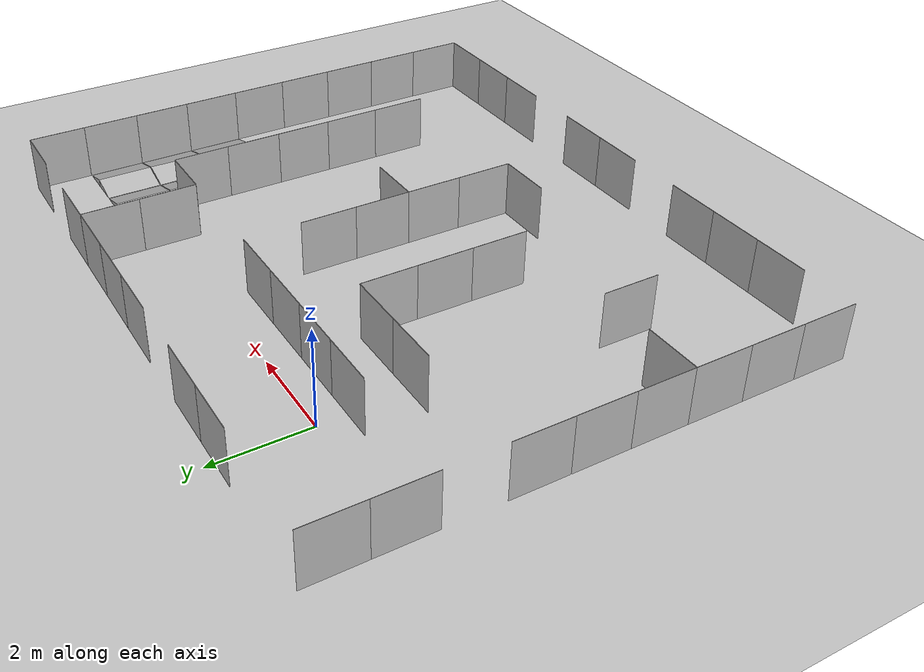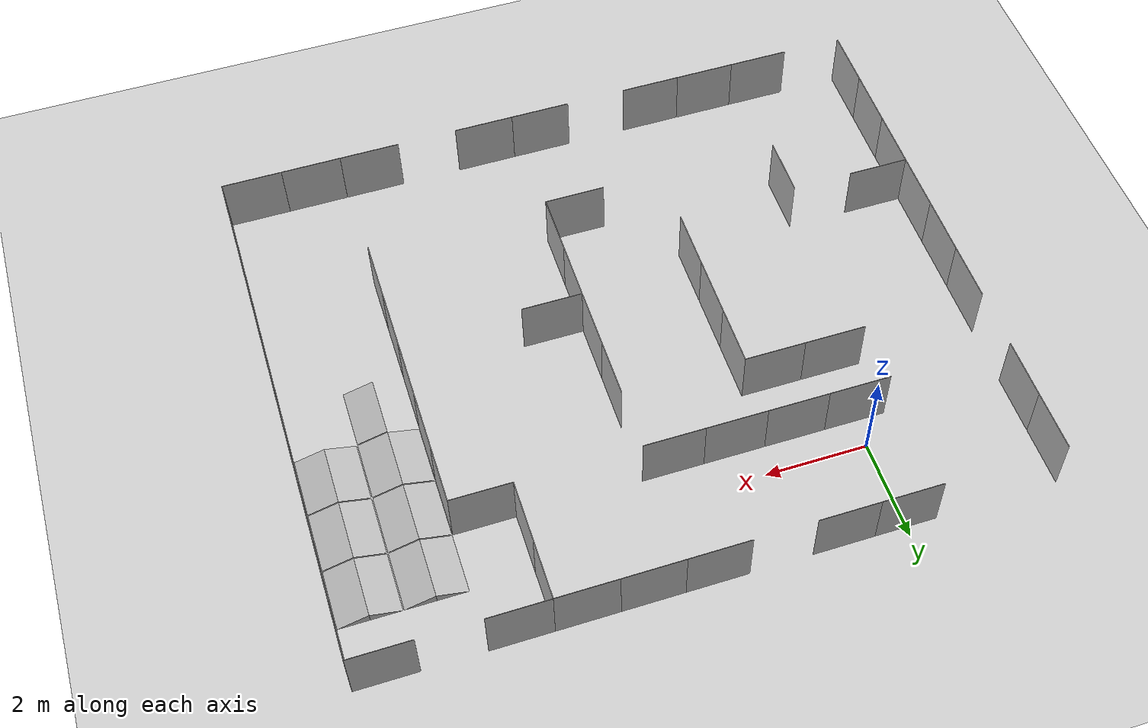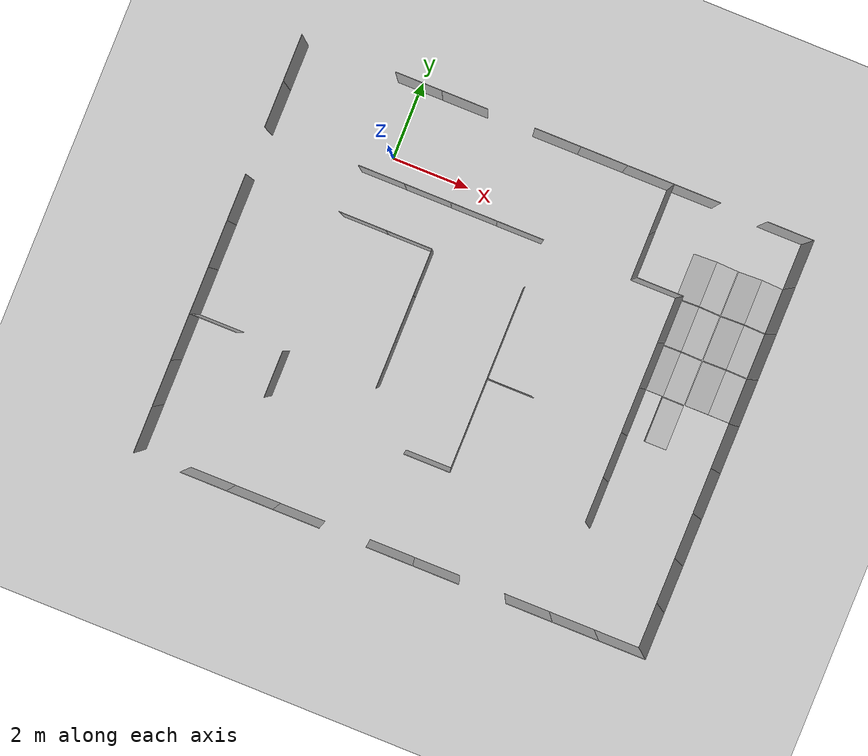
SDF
<sdf version="1.4">
 <world name="default">
  <include><uri>model://sun</uri></include>
  <model name="plane_model">
   <static>true</static>
   <link name="plane_model_link">
    <collision name="plane_model_collision">
     <geometry><plane><normal>0 0 1</normal><size>100 100</size></plane></geometry>
     <surface>
      <friction>
       <ode><mu>10.0</mu><mu2>10.0</mu2><fdir1>0 0 0</fdir1><slip1>0</slip1><slip2>0</slip2></ode>
      </friction>
      <bounce><restitution_coefficient>0</restitution_coefficient><threshold>1000000.0</threshold></bounce>
      <contact>
       <ode>
        <soft_cfm>0</soft_cfm>
        <soft_erp>0.2</soft_erp>
        <kp>1e10</kp>
        <kd>1</kd>
        <max_vel>100.0</max_vel>
        <min_depth>0.0001</min_depth>
       </ode>
      </contact>
     </surface>
    </collision>
    <visual name="plane_model_visual">
     <cast_shadows>false</cast_shadows>
     <geometry><plane><normal>0 0 1</normal><size>100 100</size></plane></geometry>
     <material><script>Gazebo/Grey</script></material>
    </visual>
   </link>
  </model>
  <model name="small_wall_1">
   <static>true</static>
   <link name="small_wall_1_link">
    <pose>-3.6 1.2 0 0 0 -1.5708</pose>
    <collision name="small_wall_1_collision">
     <geometry><mesh><uri>file://robocup/walls/small_wall.dae</uri><scale>1 1 1</scale></mesh></geometry>
    </collision>
    <visual name="small_wall_1_visual">
     <cast_shadows>false</cast_shadows>
     <geometry><mesh><uri>file://robocup/walls/small_wall.dae</uri><scale>1 1 1</scale></mesh></geometry>
    </visual>
   </link>
  </model>
  <model name="small_wall_2">
   <static>true</static>
   <link name="small_wall_2_link">
    <pose>0 2.4 0 0 0 -3.14159</pose>
    <collision name="small_wall_2_collision">
     <geometry><mesh><uri>file://robocup/walls/small_wall.dae</uri><scale>1 1 1</scale></mesh></geometry>
    </collision>
    <visual name="small_wall_2_visual">
     <cast_shadows>false</cast_shadows>
     <geometry><mesh><uri>file://robocup/walls/small_wall.dae</uri><scale>1 1 1</scale></mesh></geometry>
    </visual>
   </link>
  </model>
  <model name="small_wall_3">
   <static>true</static>
   <link name="small_wall_3_link">
    <pose>1.2 2.4 0 0 0 -3.14159</pose>
    <collision name="small_wall_3_collision">
     <geometry><mesh><uri>file://robocup/walls/small_wall.dae</uri><scale>1 1 1</scale></mesh></geometry>
    </collision>
    <visual name="small_wall_3_visual">
     <cast_shadows>false</cast_shadows>
     <geometry><mesh><uri>file://robocup/walls/small_wall.dae</uri><scale>1 1 1</scale></mesh></geometry>
    </visual>
   </link>
  </model>
  <model name="small_wall_4">
   <static>true</static>
   <link name="small_wall_4_link">
    <pose>3.6 2.4 0 0 0 -3.14159</pose>
    <collision name="small_wall_4_collision">
     <geometry><mesh><uri>file://robocup/walls/small_wall.dae</uri><scale>1 1 1</scale></mesh></geometry>
    </collision>
    <visual name="small_wall_4_visual">
     <cast_shadows>false</cast_shadows>
     <geometry><mesh><uri>file://robocup/walls/small_wall.dae</uri><scale>1 1 1</scale></mesh></geometry>
    </visual>
   </link>
  </model>
  <model name="small_wall_5">
   <static>true</static>
   <link name="small_wall_5_link">
    <pose>4.8 2.4 0 0 0 -3.14159</pose>
    <collision name="small_wall_5_collision">
     <geometry><mesh><uri>file://robocup/walls/small_wall.dae</uri><scale>1 1 1</scale></mesh></geometry>
    </collision>
    <visual name="small_wall_5_visual">
     <cast_shadows>false</cast_shadows>
     <geometry><mesh><uri>file://robocup/walls/small_wall.dae</uri><scale>1 1 1</scale></mesh></geometry>
    </visual>
   </link>
  </model>
  <model name="small_wall_6">
   <static>true</static>
   <link name="small_wall_6_link">
    <pose>6 2.4 0 0 0 -3.14159</pose>
    <collision name="small_wall_6_collision">
     <geometry><mesh><uri>file://robocup/walls/small_wall.dae</uri><scale>1 1 1</scale></mesh></geometry>
    </collision>
    <visual name="small_wall_6_visual">
     <cast_shadows>false</cast_shadows>
     <geometry><mesh><uri>file://robocup/walls/small_wall.dae</uri><scale>1 1 1</scale></mesh></geometry>
    </visual>
   </link>
  </model>
  <model name="small_wall_7">
   <static>true</static>
   <link name="small_wall_7_link">
    <pose>7.2 2.4 0 0 0 -3.14159</pose>
    <collision name="small_wall_7_collision">
     <geometry><mesh><uri>file://robocup/walls/small_wall.dae</uri><scale>1 1 1</scale></mesh></geometry>
    </collision>
    <visual name="small_wall_7_visual">
     <cast_shadows>false</cast_shadows>
     <geometry><mesh><uri>file://robocup/walls/small_wall.dae</uri><scale>1 1 1</scale></mesh></geometry>
    </visual>
   </link>
  </model>
  <model name="small_wall_8">
   <static>true</static>
   <link name="small_wall_8_link">
    <pose>9.6 2.4 0 0 0 -3.14159</pose>
    <collision name="small_wall_8_collision">
     <geometry><mesh><uri>file://robocup/walls/small_wall.dae</uri><scale>1 1 1</scale></mesh></geometry>
    </collision>
    <visual name="small_wall_8_visual">
     <cast_shadows>false</cast_shadows>
     <geometry><mesh><uri>file://robocup/walls/small_wall.dae</uri><scale>1 1 1</scale></mesh></geometry>
    </visual>
   </link>
  </model>
  <model name="small_wall_9">
   <static>true</static>
   <link name="small_wall_9_link">
    <pose>10.8 1.2 0 0 0 -4.71239</pose>
    <collision name="small_wall_9_collision">
     <geometry><mesh><uri>file://robocup/walls/small_wall.dae</uri><scale>1 1 1</scale></mesh></geometry>
    </collision>
    <visual name="small_wall_9_visual">
     <cast_shadows>false</cast_shadows>
     <geometry><mesh><uri>file://robocup/walls/small_wall.dae</uri><scale>1 1 1</scale></mesh></geometry>
    </visual>
   </link>
  </model>
  <model name="small_wall_10">
   <static>true</static>
   <link name="small_wall_10_link">
    <pose>10.8 0 0 0 0 -4.71239</pose>
    <collision name="small_wall_10_collision">
     <geometry><mesh><uri>file://robocup/walls/small_wall.dae</uri><scale>1 1 1</scale></mesh></geometry>
    </collision>
    <visual name="small_wall_10_visual">
     <cast_shadows>false</cast_shadows>
     <geometry><mesh><uri>file://robocup/walls/small_wall.dae</uri><scale>1 1 1</scale></mesh></geometry>
    </visual>
   </link>
  </model>
  <model name="small_wall_11">
   <static>true</static>
   <link name="small_wall_11_link">
    <pose>10.8 -1.2 0 0 0 -4.71239</pose>
    <collision name="small_wall_11_collision">
     <geometry><mesh><uri>file://robocup/walls/small_wall.dae</uri><scale>1 1 1</scale></mesh></geometry>
    </collision>
    <visual name="small_wall_11_visual">
     <cast_shadows>false</cast_shadows>
     <geometry><mesh><uri>file://robocup/walls/small_wall.dae</uri><scale>1 1 1</scale></mesh></geometry>
    </visual>
   </link>
  </model>
  <model name="small_wall_12">
   <static>true</static>
   <link name="small_wall_12_link">
    <pose>10.8 -2.4 0 0 0 -4.71239</pose>
    <collision name="small_wall_12_collision">
     <geometry><mesh><uri>file://robocup/walls/small_wall.dae</uri><scale>1 1 1</scale></mesh></geometry>
    </collision>
    <visual name="small_wall_12_visual">
     <cast_shadows>false</cast_shadows>
     <geometry><mesh><uri>file://robocup/walls/small_wall.dae</uri><scale>1 1 1</scale></mesh></geometry>
    </visual>
   </link>
  </model>
  <model name="small_wall_13">
   <static>true</static>
   <link name="small_wall_13_link">
    <pose>-3.6 0 0 0 0 -1.5708</pose>
    <collision name="small_wall_13_collision">
     <geometry><mesh><uri>file://robocup/walls/small_wall.dae</uri><scale>1 1 1</scale></mesh></geometry>
    </collision>
    <visual name="small_wall_13_visual">
     <cast_shadows>false</cast_shadows>
     <geometry><mesh><uri>file://robocup/walls/small_wall.dae</uri><scale>1 1 1</scale></mesh></geometry>
    </visual>
   </link>
  </model>
  <model name="small_wall_14">
   <static>true</static>
   <link name="small_wall_14_link">
    <pose>-3.6 -2.4 0 0 0 -1.5708</pose>
    <collision name="small_wall_14_collision">
     <geometry><mesh><uri>file://robocup/walls/small_wall.dae</uri><scale>1 1 1</scale></mesh></geometry>
    </collision>
    <visual name="small_wall_14_visual">
     <cast_shadows>false</cast_shadows>
     <geometry><mesh><uri>file://robocup/walls/small_wall.dae</uri><scale>1 1 1</scale></mesh></geometry>
    </visual>
   </link>
  </model>
  <model name="small_wall_15">
   <static>true</static>
   <link name="small_wall_15_link">
    <pose>-3.6 -3.6 0 0 0 -1.5708</pose>
    <collision name="small_wall_15_collision">
     <geometry><mesh><uri>file://robocup/walls/small_wall.dae</uri><scale>1 1 1</scale></mesh></geometry>
    </collision>
    <visual name="small_wall_15_visual">
     <cast_shadows>false</cast_shadows>
     <geometry><mesh><uri>file://robocup/walls/small_wall.dae</uri><scale>1 1 1</scale></mesh></geometry>
    </visual>
   </link>
  </model>
  <model name="small_wall_16">
   <static>true</static>
   <link name="small_wall_16_link">
    <pose>-3.6 -4.8 0 0 0 -1.5708</pose>
    <collision name="small_wall_16_collision">
     <geometry><mesh><uri>file://robocup/walls/small_wall.dae</uri><scale>1 1 1</scale></mesh></geometry>
    </collision>
    <visual name="small_wall_16_visual">
     <cast_shadows>false</cast_shadows>
     <geometry><mesh><uri>file://robocup/walls/small_wall.dae</uri><scale>1 1 1</scale></mesh></geometry>
    </visual>
   </link>
  </model>
  <model name="small_wall_17">
   <static>true</static>
   <link name="small_wall_17_link">
    <pose>-3.6 -6 0 0 0 -1.5708</pose>
    <collision name="small_wall_17_collision">
     <geometry><mesh><uri>file://robocup/walls/small_wall.dae</uri><scale>1 1 1</scale></mesh></geometry>
    </collision>
    <visual name="small_wall_17_visual">
     <cast_shadows>false</cast_shadows>
     <geometry><mesh><uri>file://robocup/walls/small_wall.dae</uri><scale>1 1 1</scale></mesh></geometry>
    </visual>
   </link>
  </model>
  <model name="small_wall_18">
   <static>true</static>
   <link name="small_wall_18_link">
    <pose>-3.6 -7.2 0 0 0 -1.5708</pose>
    <collision name="small_wall_18_collision">
     <geometry><mesh><uri>file://robocup/walls/small_wall.dae</uri><scale>1 1 1</scale></mesh></geometry>
    </collision>
    <visual name="small_wall_18_visual">
     <cast_shadows>false</cast_shadows>
     <geometry><mesh><uri>file://robocup/walls/small_wall.dae</uri><scale>1 1 1</scale></mesh></geometry>
    </visual>
   </link>
  </model>
  <model name="small_wall_19">
   <static>true</static>
   <link name="small_wall_19_link">
    <pose>10.8 -3.6 0 0 0 -4.71239</pose>
    <collision name="small_wall_19_collision">
     <geometry><mesh><uri>file://robocup/walls/small_wall.dae</uri><scale>1 1 1</scale></mesh></geometry>
    </collision>
    <visual name="small_wall_19_visual">
     <cast_shadows>false</cast_shadows>
     <geometry><mesh><uri>file://robocup/walls/small_wall.dae</uri><scale>1 1 1</scale></mesh></geometry>
    </visual>
   </link>
  </model>
  <model name="small_wall_20">
   <static>true</static>
   <link name="small_wall_20_link">
    <pose>10.8 -4.8 0 0 0 -4.71239</pose>
    <collision name="small_wall_20_collision">
     <geometry><mesh><uri>file://robocup/walls/small_wall.dae</uri><scale>1 1 1</scale></mesh></geometry>
    </collision>
    <visual name="small_wall_20_visual">
     <cast_shadows>false</cast_shadows>
     <geometry><mesh><uri>file://robocup/walls/small_wall.dae</uri><scale>1 1 1</scale></mesh></geometry>
    </visual>
   </link>
  </model>
  <model name="small_wall_21">
   <static>true</static>
   <link name="small_wall_21_link">
    <pose>10.8 -6 0 0 0 -4.71239</pose>
    <collision name="small_wall_21_collision">
     <geometry><mesh><uri>file://robocup/walls/small_wall.dae</uri><scale>1 1 1</scale></mesh></geometry>
    </collision>
    <visual name="small_wall_21_visual">
     <cast_shadows>false</cast_shadows>
     <geometry><mesh><uri>file://robocup/walls/small_wall.dae</uri><scale>1 1 1</scale></mesh></geometry>
    </visual>
   </link>
  </model>
  <model name="small_wall_22">
   <static>true</static>
   <link name="small_wall_22_link">
    <pose>10.8 -7.2 0 0 0 -4.71239</pose>
    <collision name="small_wall_22_collision">
     <geometry><mesh><uri>file://robocup/walls/small_wall.dae</uri><scale>1 1 1</scale></mesh></geometry>
    </collision>
    <visual name="small_wall_22_visual">
     <cast_shadows>false</cast_shadows>
     <geometry><mesh><uri>file://robocup/walls/small_wall.dae</uri><scale>1 1 1</scale></mesh></geometry>
    </visual>
   </link>
  </model>
  <model name="small_wall_23">
   <static>true</static>
   <link name="small_wall_23_link">
    <pose>10.8 -8.4 0 0 0 -4.71239</pose>
    <collision name="small_wall_23_collision">
     <geometry><mesh><uri>file://robocup/walls/small_wall.dae</uri><scale>1 1 1</scale></mesh></geometry>
    </collision>
    <visual name="small_wall_23_visual">
     <cast_shadows>false</cast_shadows>
     <geometry><mesh><uri>file://robocup/walls/small_wall.dae</uri><scale>1 1 1</scale></mesh></geometry>
    </visual>
   </link>
  </model>
  <model name="small_wall_24">
   <static>true</static>
   <link name="small_wall_24_link">
    <pose>-3.6 -8.4 0 0 0 -1.5708</pose>
    <collision name="small_wall_24_collision">
     <geometry><mesh><uri>file://robocup/walls/small_wall.dae</uri><scale>1 1 1</scale></mesh></geometry>
    </collision>
    <visual name="small_wall_24_visual">
     <cast_shadows>false</cast_shadows>
     <geometry><mesh><uri>file://robocup/walls/small_wall.dae</uri><scale>1 1 1</scale></mesh></geometry>
    </visual>
   </link>
  </model>
  <model name="small_wall_25">
   <static>true</static>
   <link name="small_wall_25_link">
    <pose>-1.2 -9.6 0 0 0 0</pose>
    <collision name="small_wall_25_collision">
     <geometry><mesh><uri>file://robocup/walls/small_wall.dae</uri><scale>1 1 1</scale></mesh></geometry>
    </collision>
    <visual name="small_wall_25_visual">
     <cast_shadows>false</cast_shadows>
     <geometry><mesh><uri>file://robocup/walls/small_wall.dae</uri><scale>1 1 1</scale></mesh></geometry>
    </visual>
   </link>
  </model>
  <model name="small_wall_26">
   <static>true</static>
   <link name="small_wall_26_link">
    <pose>0 -9.6 0 0 0 0</pose>
    <collision name="small_wall_26_collision">
     <geometry><mesh><uri>file://robocup/walls/small_wall.dae</uri><scale>1 1 1</scale></mesh></geometry>
    </collision>
    <visual name="small_wall_26_visual">
     <cast_shadows>false</cast_shadows>
     <geometry><mesh><uri>file://robocup/walls/small_wall.dae</uri><scale>1 1 1</scale></mesh></geometry>
    </visual>
   </link>
  </model>
  <model name="small_wall_27">
   <static>true</static>
   <link name="small_wall_27_link">
    <pose>1.2 -9.6 0 0 0 0</pose>
    <collision name="small_wall_27_collision">
     <geometry><mesh><uri>file://robocup/walls/small_wall.dae</uri><scale>1 1 1</scale></mesh></geometry>
    </collision>
    <visual name="small_wall_27_visual">
     <cast_shadows>false</cast_shadows>
     <geometry><mesh><uri>file://robocup/walls/small_wall.dae</uri><scale>1 1 1</scale></mesh></geometry>
    </visual>
   </link>
  </model>
  <model name="small_wall_28">
   <static>true</static>
   <link name="small_wall_28_link">
    <pose>3.6 -9.6 0 0 0 0</pose>
    <collision name="small_wall_28_collision">
     <geometry><mesh><uri>file://robocup/walls/small_wall.dae</uri><scale>1 1 1</scale></mesh></geometry>
    </collision>
    <visual name="small_wall_28_visual">
     <cast_shadows>false</cast_shadows>
     <geometry><mesh><uri>file://robocup/walls/small_wall.dae</uri><scale>1 1 1</scale></mesh></geometry>
    </visual>
   </link>
  </model>
  <model name="small_wall_29">
   <static>true</static>
   <link name="small_wall_29_link">
    <pose>4.8 -9.6 0 0 0 0</pose>
    <collision name="small_wall_29_collision">
     <geometry><mesh><uri>file://robocup/walls/small_wall.dae</uri><scale>1 1 1</scale></mesh></geometry>
    </collision>
    <visual name="small_wall_29_visual">
     <cast_shadows>false</cast_shadows>
     <geometry><mesh><uri>file://robocup/walls/small_wall.dae</uri><scale>1 1 1</scale></mesh></geometry>
    </visual>
   </link>
  </model>
  <model name="small_wall_30">
   <static>true</static>
   <link name="small_wall_30_link">
    <pose>7.2 -9.6 0 0 0 0</pose>
    <collision name="small_wall_30_collision">
     <geometry><mesh><uri>file://robocup/walls/small_wall.dae</uri><scale>1 1 1</scale></mesh></geometry>
    </collision>
    <visual name="small_wall_30_visual">
     <cast_shadows>false</cast_shadows>
     <geometry><mesh><uri>file://robocup/walls/small_wall.dae</uri><scale>1 1 1</scale></mesh></geometry>
    </visual>
   </link>
  </model>
  <model name="small_wall_31">
   <static>true</static>
   <link name="small_wall_31_link">
    <pose>8.4 -9.6 0 0 0 0</pose>
    <collision name="small_wall_31_collision">
     <geometry><mesh><uri>file://robocup/walls/small_wall.dae</uri><scale>1 1 1</scale></mesh></geometry>
    </collision>
    <visual name="small_wall_31_visual">
     <cast_shadows>false</cast_shadows>
     <geometry><mesh><uri>file://robocup/walls/small_wall.dae</uri><scale>1 1 1</scale></mesh></geometry>
    </visual>
   </link>
  </model>
  <model name="small_wall_32">
   <static>true</static>
   <link name="small_wall_32_link">
    <pose>9.6 -9.6 0 0 0 0</pose>
    <collision name="small_wall_32_collision">
     <geometry><mesh><uri>file://robocup/walls/small_wall.dae</uri><scale>1 1 1</scale></mesh></geometry>
    </collision>
    <visual name="small_wall_32_visual">
     <cast_shadows>false</cast_shadows>
     <geometry><mesh><uri>file://robocup/walls/small_wall.dae</uri><scale>1 1 1</scale></mesh></geometry>
    </visual>
   </link>
  </model>
  <model name="small_wall_33">
   <static>true</static>
   <link name="small_wall_33_link">
    <pose>7.2 1.2 0 0 0 -4.71239</pose>
    <collision name="small_wall_33_collision">
     <geometry><mesh><uri>file://robocup/walls/small_wall.dae</uri><scale>1 1 1</scale></mesh></geometry>
    </collision>
    <visual name="small_wall_33_visual">
     <cast_shadows>false</cast_shadows>
     <geometry><mesh><uri>file://robocup/walls/small_wall.dae</uri><scale>1 1 1</scale></mesh></geometry>
    </visual>
   </link>
  </model>
  <model name="small_wall_34">
   <static>true</static>
   <link name="small_wall_34_link">
    <pose>7.2 0 0 0 0 -4.71239</pose>
    <collision name="small_wall_34_collision">
     <geometry><mesh><uri>file://robocup/walls/small_wall.dae</uri><scale>1 1 1</scale></mesh></geometry>
    </collision>
    <visual name="small_wall_34_visual">
     <cast_shadows>false</cast_shadows>
     <geometry><mesh><uri>file://robocup/walls/small_wall.dae</uri><scale>1 1 1</scale></mesh></geometry>
    </visual>
   </link>
  </model>
  <model name="small_wall_35">
   <static>true</static>
   <link name="small_wall_35_link">
    <pose>7.2 0 0 0 0 -3.14159</pose>
    <collision name="small_wall_35_collision">
     <geometry><mesh><uri>file://robocup/walls/small_wall.dae</uri><scale>1 1 1</scale></mesh></geometry>
    </collision>
    <visual name="small_wall_35_visual">
     <cast_shadows>false</cast_shadows>
     <geometry><mesh><uri>file://robocup/walls/small_wall.dae</uri><scale>1 1 1</scale></mesh></geometry>
    </visual>
   </link>
  </model>
  <model name="small_wall_36">
   <static>true</static>
   <link name="small_wall_36_link">
    <pose>7.2 -1.2 0 0 0 -1.5708</pose>
    <collision name="small_wall_36_collision">
     <geometry><mesh><uri>file://robocup/walls/small_wall.dae</uri><scale>1 1 1</scale></mesh></geometry>
    </collision>
    <visual name="small_wall_36_visual">
     <cast_shadows>false</cast_shadows>
     <geometry><mesh><uri>file://robocup/walls/small_wall.dae</uri><scale>1 1 1</scale></mesh></geometry>
    </visual>
   </link>
  </model>
  <model name="small_wall_37">
   <static>true</static>
   <link name="small_wall_37_link">
    <pose>8.4 -2.4 0 0 0 -4.71239</pose>
    <collision name="small_wall_37_collision">
     <geometry><mesh><uri>file://robocup/walls/small_wall.dae</uri><scale>1 1 1</scale></mesh></geometry>
    </collision>
    <visual name="small_wall_37_visual">
     <cast_shadows>false</cast_shadows>
     <geometry><mesh><uri>file://robocup/walls/small_wall.dae</uri><scale>1 1 1</scale></mesh></geometry>
    </visual>
   </link>
  </model>
  <model name="small_wall_38">
   <static>true</static>
   <link name="small_wall_38_link">
    <pose>7.2 -3.6 0 0 0 -1.5708</pose>
    <collision name="small_wall_38_collision">
     <geometry><mesh><uri>file://robocup/walls/small_wall.dae</uri><scale>1 1 1</scale></mesh></geometry>
    </collision>
    <visual name="small_wall_38_visual">
     <cast_shadows>false</cast_shadows>
     <geometry><mesh><uri>file://robocup/walls/small_wall.dae</uri><scale>1 1 1</scale></mesh></geometry>
    </visual>
   </link>
  </model>
  <model name="small_wall_39">
   <static>true</static>
   <link name="small_wall_39_link">
    <pose>8.4 -4.8 0 0 0 -4.71239</pose>
    <collision name="small_wall_39_collision">
     <geometry><mesh><uri>file://robocup/walls/small_wall.dae</uri><scale>1 1 1</scale></mesh></geometry>
    </collision>
    <visual name="small_wall_39_visual">
     <cast_shadows>false</cast_shadows>
     <geometry><mesh><uri>file://robocup/walls/small_wall.dae</uri><scale>1 1 1</scale></mesh></geometry>
    </visual>
   </link>
  </model>
  <model name="small_wall_40">
   <static>true</static>
   <link name="small_wall_40_link">
    <pose>7.2 -6 0 0 0 -1.5708</pose>
    <collision name="small_wall_40_collision">
     <geometry><mesh><uri>file://robocup/walls/small_wall.dae</uri><scale>1 1 1</scale></mesh></geometry>
    </collision>
    <visual name="small_wall_40_visual">
     <cast_shadows>false</cast_shadows>
     <geometry><mesh><uri>file://robocup/walls/small_wall.dae</uri><scale>1 1 1</scale></mesh></geometry>
    </visual>
   </link>
  </model>
  <model name="small_wall_41">
   <static>true</static>
   <link name="small_wall_41_link">
    <pose>1.2 -2.4 0 0 0 0</pose>
    <collision name="small_wall_41_collision">
     <geometry><mesh><uri>file://robocup/walls/small_wall.dae</uri><scale>1 1 1</scale></mesh></geometry>
    </collision>
    <visual name="small_wall_41_visual">
     <cast_shadows>false</cast_shadows>
     <geometry><mesh><uri>file://robocup/walls/small_wall.dae</uri><scale>1 1 1</scale></mesh></geometry>
    </visual>
   </link>
  </model>
  <model name="small_wall_42">
   <static>true</static>
   <link name="small_wall_42_link">
    <pose>0 -1.2 0 0 0 -3.14159</pose>
    <collision name="small_wall_42_collision">
     <geometry><mesh><uri>file://robocup/walls/small_wall.dae</uri><scale>1 1 1</scale></mesh></geometry>
    </collision>
    <visual name="small_wall_42_visual">
     <cast_shadows>false</cast_shadows>
     <geometry><mesh><uri>file://robocup/walls/small_wall.dae</uri><scale>1 1 1</scale></mesh></geometry>
    </visual>
   </link>
  </model>
  <model name="small_wall_43">
   <static>true</static>
   <link name="small_wall_43_link">
    <pose>0 -1.2 0 0 0 0</pose>
    <collision name="small_wall_43_collision">
     <geometry><mesh><uri>file://robocup/walls/small_wall.dae</uri><scale>1 1 1</scale></mesh></geometry>
    </collision>
    <visual name="small_wall_43_visual">
     <cast_shadows>false</cast_shadows>
     <geometry><mesh><uri>file://robocup/walls/small_wall.dae</uri><scale>1 1 1</scale></mesh></geometry>
    </visual>
   </link>
  </model>
  <model name="small_wall_44">
   <static>true</static>
   <link name="small_wall_44_link">
    <pose>1.2 -1.2 0 0 0 0</pose>
    <collision name="small_wall_44_collision">
     <geometry><mesh><uri>file://robocup/walls/small_wall.dae</uri><scale>1 1 1</scale></mesh></geometry>
    </collision>
    <visual name="small_wall_44_visual">
     <cast_shadows>false</cast_shadows>
     <geometry><mesh><uri>file://robocup/walls/small_wall.dae</uri><scale>1 1 1</scale></mesh></geometry>
    </visual>
   </link>
  </model>
  <model name="small_wall_45">
   <static>true</static>
   <link name="small_wall_45_link">
    <pose>2.4 0 0 0 0 -3.14159</pose>
    <collision name="small_wall_45_collision">
     <geometry><mesh><uri>file://robocup/walls/small_wall.dae</uri><scale>1 1 1</scale></mesh></geometry>
    </collision>
    <visual name="small_wall_45_visual">
     <cast_shadows>false</cast_shadows>
     <geometry><mesh><uri>file://robocup/walls/small_wall.dae</uri><scale>1 1 1</scale></mesh></geometry>
    </visual>
   </link>
  </model>
  <model name="small_wall_46">
   <static>true</static>
   <link name="small_wall_46_link">
    <pose>3.6 -1.2 0 0 0 0</pose>
    <collision name="small_wall_46_collision">
     <geometry><mesh><uri>file://robocup/walls/small_wall.dae</uri><scale>1 1 1</scale></mesh></geometry>
    </collision>
    <visual name="small_wall_46_visual">
     <cast_shadows>false</cast_shadows>
     <geometry><mesh><uri>file://robocup/walls/small_wall.dae</uri><scale>1 1 1</scale></mesh></geometry>
    </visual>
   </link>
  </model>
  <model name="small_wall_47">
   <static>true</static>
   <link name="small_wall_47_link">
    <pose>1.2 -2.4 0 0 0 -1.5708</pose>
    <collision name="small_wall_47_collision">
     <geometry><mesh><uri>file://robocup/walls/small_wall.dae</uri><scale>1 1 1</scale></mesh></geometry>
    </collision>
    <visual name="small_wall_47_visual">
     <cast_shadows>false</cast_shadows>
     <geometry><mesh><uri>file://robocup/walls/small_wall.dae</uri><scale>1 1 1</scale></mesh></geometry>
    </visual>
   </link>
  </model>
  <model name="small_wall_48">
   <static>true</static>
   <link name="small_wall_48_link">
    <pose>1.2 -3.6 0 0 0 -1.5708</pose>
    <collision name="small_wall_48_collision">
     <geometry><mesh><uri>file://robocup/walls/small_wall.dae</uri><scale>1 1 1</scale></mesh></geometry>
    </collision>
    <visual name="small_wall_48_visual">
     <cast_shadows>false</cast_shadows>
     <geometry><mesh><uri>file://robocup/walls/small_wall.dae</uri><scale>1 1 1</scale></mesh></geometry>
    </visual>
   </link>
  </model>
  <model name="small_wall_49">
   <static>true</static>
   <link name="small_wall_49_link">
    <pose>3.6 -2.4 0 0 0 -1.5708</pose>
    <collision name="small_wall_49_collision">
     <geometry><mesh><uri>file://robocup/walls/small_wall.dae</uri><scale>1 1 1</scale></mesh></geometry>
    </collision>
    <visual name="small_wall_49_visual">
     <cast_shadows>false</cast_shadows>
     <geometry><mesh><uri>file://robocup/walls/small_wall.dae</uri><scale>1 1 1</scale></mesh></geometry>
    </visual>
   </link>
  </model>
  <model name="small_wall_50">
   <static>true</static>
   <link name="small_wall_50_link">
    <pose>3.6 -3.6 0 0 0 -1.5708</pose>
    <collision name="small_wall_50_collision">
     <geometry><mesh><uri>file://robocup/walls/small_wall.dae</uri><scale>1 1 1</scale></mesh></geometry>
    </collision>
    <visual name="small_wall_50_visual">
     <cast_shadows>false</cast_shadows>
     <geometry><mesh><uri>file://robocup/walls/small_wall.dae</uri><scale>1 1 1</scale></mesh></geometry>
    </visual>
   </link>
  </model>
  <model name="small_wall_51">
   <static>true</static>
   <link name="small_wall_51_link">
    <pose>4.8 -4.8 0 0 0 0</pose>
    <collision name="small_wall_51_collision">
     <geometry><mesh><uri>file://robocup/walls/small_wall.dae</uri><scale>1 1 1</scale></mesh></geometry>
    </collision>
    <visual name="small_wall_51_visual">
     <cast_shadows>false</cast_shadows>
     <geometry><mesh><uri>file://robocup/walls/small_wall.dae</uri><scale>1 1 1</scale></mesh></geometry>
    </visual>
   </link>
  </model>
  <model name="small_wall_52">
   <static>true</static>
   <link name="small_wall_52_link">
    <pose>3.6 -4.8 0 0 0 -1.5708</pose>
    <collision name="small_wall_52_collision">
     <geometry><mesh><uri>file://robocup/walls/small_wall.dae</uri><scale>1 1 1</scale></mesh></geometry>
    </collision>
    <visual name="small_wall_52_visual">
     <cast_shadows>false</cast_shadows>
     <geometry><mesh><uri>file://robocup/walls/small_wall.dae</uri><scale>1 1 1</scale></mesh></geometry>
    </visual>
   </link>
  </model>
  <model name="small_wall_53">
   <static>true</static>
   <link name="small_wall_53_link">
    <pose>2.4 -4.8 0 0 0 -4.71239</pose>
    <collision name="small_wall_53_collision">
     <geometry><mesh><uri>file://robocup/walls/small_wall.dae</uri><scale>1 1 1</scale></mesh></geometry>
    </collision>
    <visual name="small_wall_53_visual">
     <cast_shadows>false</cast_shadows>
     <geometry><mesh><uri>file://robocup/walls/small_wall.dae</uri><scale>1 1 1</scale></mesh></geometry>
    </visual>
   </link>
  </model>
  <model name="small_wall_54">
   <static>true</static>
   <link name="small_wall_54_link">
    <pose>-2.4 -6 0 0 0 0</pose>
    <collision name="small_wall_54_collision">
     <geometry><mesh><uri>file://robocup/walls/small_wall.dae</uri><scale>1 1 1</scale></mesh></geometry>
    </collision>
    <visual name="small_wall_54_visual">
     <cast_shadows>false</cast_shadows>
     <geometry><mesh><uri>file://robocup/walls/small_wall.dae</uri><scale>1 1 1</scale></mesh></geometry>
    </visual>
   </link>
  </model>
  <model name="small_wall_55">
   <static>true</static>
   <link name="small_wall_55_link">
    <pose>-1.2 -6 0 0 0 -1.5708</pose>
    <collision name="small_wall_55_collision">
     <geometry><mesh><uri>file://robocup/walls/small_wall.dae</uri><scale>1 1 1</scale></mesh></geometry>
    </collision>
    <visual name="small_wall_55_visual">
     <cast_shadows>false</cast_shadows>
     <geometry><mesh><uri>file://robocup/walls/small_wall.dae</uri><scale>1 1 1</scale></mesh></geometry>
    </visual>
   </link>
  </model>
  <model name="small_wall_56">
   <static>true</static>
   <link name="small_wall_56_link">
    <pose>4.8 -6 0 0 0 -4.71239</pose>
    <collision name="small_wall_56_collision">
     <geometry><mesh><uri>file://robocup/walls/small_wall.dae</uri><scale>1 1 1</scale></mesh></geometry>
    </collision>
    <visual name="small_wall_56_visual">
     <cast_shadows>false</cast_shadows>
     <geometry><mesh><uri>file://robocup/walls/small_wall.dae</uri><scale>1 1 1</scale></mesh></geometry>
    </visual>
   </link>
  </model>
  <model name="small_wall_57">
   <static>true</static>
   <link name="small_wall_57_link">
    <pose>3.6 -6 0 0 0 -3.14159</pose>
    <collision name="small_wall_57_collision">
     <geometry><mesh><uri>file://robocup/walls/small_wall.dae</uri><scale>1 1 1</scale></mesh></geometry>
    </collision>
    <visual name="small_wall_57_visual">
     <cast_shadows>false</cast_shadows>
     <geometry><mesh><uri>file://robocup/walls/small_wall.dae</uri><scale>1 1 1</scale></mesh></geometry>
    </visual>
   </link>
  </model>
  <model name="half_ramp_1">
   <static>true</static>
   <link name="half_ramp_1_link">
    <pose>9.6 -1.2 0 0 0 -1.5708</pose>
    <collision name="half_ramp_1_collision">
     <geometry><mesh><uri>file://robocup/ramps/half_ramp.dae</uri><scale>1 1 1</scale></mesh></geometry>
    </collision>
    <visual name="half_ramp_1_visual">
     <cast_shadows>false</cast_shadows>
     <geometry><mesh><uri>file://robocup/ramps/half_ramp.dae</uri><scale>1 1 1</scale></mesh></geometry>
    </visual>
   </link>
  </model>
  <model name="half_ramp_2">
   <static>true</static>
   <link name="half_ramp_2_link">
    <pose>8.4 -1.2 0 0 0 -1.5708</pose>
    <collision name="half_ramp_2_collision">
     <geometry><mesh><uri>file://robocup/ramps/half_ramp.dae</uri><scale>1 1 1</scale></mesh></geometry>
    </collision>
    <visual name="half_ramp_2_visual">
     <cast_shadows>false</cast_shadows>
     <geometry><mesh><uri>file://robocup/ramps/half_ramp.dae</uri><scale>1 1 1</scale></mesh></geometry>
    </visual>
   </link>
  </model>
  <model name="half_ramp_3">
   <static>true</static>
   <link name="half_ramp_3_link">
    <pose>8.4 -1.2 0 0 0 -4.71239</pose>
    <collision name="half_ramp_3_collision">
     <geometry><mesh><uri>file://robocup/ramps/half_ramp.dae</uri><scale>1 1 1</scale></mesh></geometry>
    </collision>
    <visual name="half_ramp_3_visual">
     <cast_shadows>false</cast_shadows>
     <geometry><mesh><uri>file://robocup/ramps/half_ramp.dae</uri><scale>1 1 1</scale></mesh></geometry>
    </visual>
   </link>
  </model>
  <model name="half_ramp_4">
   <static>true</static>
   <link name="half_ramp_4_link">
    <pose>9.6 -1.2 0 0 0 -4.71239</pose>
    <collision name="half_ramp_4_collision">
     <geometry><mesh><uri>file://robocup/ramps/half_ramp.dae</uri><scale>1 1 1</scale></mesh></geometry>
    </collision>
    <visual name="half_ramp_4_visual">
     <cast_shadows>false</cast_shadows>
     <geometry><mesh><uri>file://robocup/ramps/half_ramp.dae</uri><scale>1 1 1</scale></mesh></geometry>
    </visual>
   </link>
  </model>
  <model name="half_ramp_5">
   <static>true</static>
   <link name="half_ramp_5_link">
    <pose>8.4 0 0 0 0 -1.5708</pose>
    <collision name="half_ramp_5_collision">
     <geometry><mesh><uri>file://robocup/ramps/half_ramp.dae</uri><scale>1 1 1</scale></mesh></geometry>
    </collision>
    <visual name="half_ramp_5_visual">
     <cast_shadows>false</cast_shadows>
     <geometry><mesh><uri>file://robocup/ramps/half_ramp.dae</uri><scale>1 1 1</scale></mesh></geometry>
    </visual>
   </link>
  </model>
  <model name="half_ramp_6">
   <static>true</static>
   <link name="half_ramp_6_link">
    <pose>8.4 0 0 0 0 -4.71239</pose>
    <collision name="half_ramp_6_collision">
     <geometry><mesh><uri>file://robocup/ramps/half_ramp.dae</uri><scale>1 1 1</scale></mesh></geometry>
    </collision>
    <visual name="half_ramp_6_visual">
     <cast_shadows>false</cast_shadows>
     <geometry><mesh><uri>file://robocup/ramps/half_ramp.dae</uri><scale>1 1 1</scale></mesh></geometry>
    </visual>
   </link>
  </model>
  <model name="half_ramp_7">
   <static>true</static>
   <link name="half_ramp_7_link">
    <pose>9.6 0 0 0 0 -1.5708</pose>
    <collision name="half_ramp_7_collision">
     <geometry><mesh><uri>file://robocup/ramps/half_ramp.dae</uri><scale>1 1 1</scale></mesh></geometry>
    </collision>
    <visual name="half_ramp_7_visual">
     <cast_shadows>false</cast_shadows>
     <geometry><mesh><uri>file://robocup/ramps/half_ramp.dae</uri><scale>1 1 1</scale></mesh></geometry>
    </visual>
   </link>
  </model>
  <model name="half_ramp_8">
   <static>true</static>
   <link name="half_ramp_8_link">
    <pose>9.6 0 0 0 0 -4.71239</pose>
    <collision name="half_ramp_8_collision">
     <geometry><mesh><uri>file://robocup/ramps/half_ramp.dae</uri><scale>1 1 1</scale></mesh></geometry>
    </collision>
    <visual name="half_ramp_8_visual">
     <cast_shadows>false</cast_shadows>
     <geometry><mesh><uri>file://robocup/ramps/half_ramp.dae</uri><scale>1 1 1</scale></mesh></geometry>
    </visual>
   </link>
  </model>
  <model name="half_ramp_9">
   <static>true</static>
   <link name="half_ramp_9_link">
    <pose>8.4 -2.4 0 0 0 -1.5708</pose>
    <collision name="half_ramp_9_collision">
     <geometry><mesh><uri>file://robocup/ramps/half_ramp.dae</uri><scale>1 1 1</scale></mesh></geometry>
    </collision>
    <visual name="half_ramp_9_visual">
     <cast_shadows>false</cast_shadows>
     <geometry><mesh><uri>file://robocup/ramps/half_ramp.dae</uri><scale>1 1 1</scale></mesh></geometry>
    </visual>
   </link>
  </model>
  <model name="half_ramp_10">
   <static>true</static>
   <link name="half_ramp_10_link">
    <pose>8.4 -3.6 0 0 0 -4.71239</pose>
    <collision name="half_ramp_10_collision">
     <geometry><mesh><uri>file://robocup/ramps/half_ramp.dae</uri><scale>1 1 1</scale></mesh></geometry>
    </collision>
    <visual name="half_ramp_10_visual">
     <cast_shadows>false</cast_shadows>
     <geometry><mesh><uri>file://robocup/ramps/half_ramp.dae</uri><scale>1 1 1</scale></mesh></geometry>
    </visual>
   </link>
  </model>
  <model name="half_ramp_11">
   <static>true</static>
   <link name="half_ramp_11_link">
    <pose>9.6 -2.4 0 0 0 -1.5708</pose>
    <collision name="half_ramp_11_collision">
     <geometry><mesh><uri>file://robocup/ramps/half_ramp.dae</uri><scale>1 1 1</scale></mesh></geometry>
    </collision>
    <visual name="half_ramp_11_visual">
     <cast_shadows>false</cast_shadows>
     <geometry><mesh><uri>file://robocup/ramps/half_ramp.dae</uri><scale>1 1 1</scale></mesh></geometry>
    </visual>
   </link>
  </model>
  <model name="half_ramp_12">
   <static>true</static>
   <link name="half_ramp_12_link">
    <pose>9.6 -2.4 0 0 0 -4.71239</pose>
    <collision name="half_ramp_12_collision">
     <geometry><mesh><uri>file://robocup/ramps/half_ramp.dae</uri><scale>1 1 1</scale></mesh></geometry>
    </collision>
    <visual name="half_ramp_12_visual">
     <cast_shadows>false</cast_shadows>
     <geometry><mesh><uri>file://robocup/ramps/half_ramp.dae</uri><scale>1 1 1</scale></mesh></geometry>
    </visual>
   </link>
  </model>
  <model name="half_ramp_13">
   <static>true</static>
   <link name="half_ramp_13_link">
    <pose>8.4 -2.4 0 0 0 -4.71239</pose>
    <collision name="half_ramp_13_collision">
     <geometry><mesh><uri>file://robocup/ramps/half_ramp.dae</uri><scale>1 1 1</scale></mesh></geometry>
    </collision>
    <visual name="half_ramp_13_visual">
     <cast_shadows>false</cast_shadows>
     <geometry><mesh><uri>file://robocup/ramps/half_ramp.dae</uri><scale>1 1 1</scale></mesh></geometry>
    </visual>
   </link>
  </model>
 </world>
</sdf>
